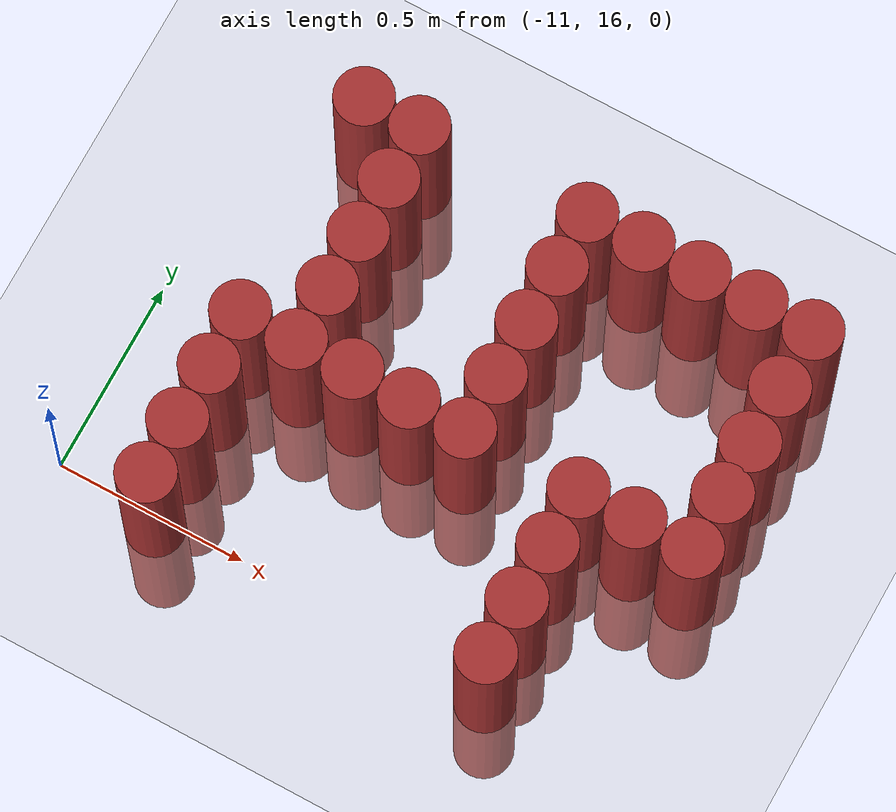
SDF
<sdf version="1.6">
 <world name="default">
  <model name="ground_plane">
   <static>1</static>
   <link name="link">
    <collision name="collision">
     <geometry><plane><normal>0 0 1</normal><size>100 100</size></plane></geometry>
     <surface><friction><ode><mu>100</mu><mu2>50</mu2></ode></friction></surface>
    </collision>
    <visual name="visual">
     <cast_shadows>0</cast_shadows>
     <geometry><plane><normal>0 0 1</normal><size>100 100</size></plane></geometry>
     <material>
      <script><uri>file://media/materials/scripts/gazebo.material</uri><name>Gazebo/Grey</name></script>
     </material>
    </visual>
   </link>
  </model>
  <model name="unit_cylinder_340">
   <static>1</static>
   <pose>-10.725 15.975 0 0 -0 0</pose>
   <link name="link">
    <inertial>
     <mass>1</mass>
     <inertia><ixx>0.145833</ixx><ixy>0</ixy><ixz>0</ixz><iyy>0.145833</iyy><iyz>0</iyz><izz>0.125</izz></inertia>
    </inertial>
    <collision name="collision">
     <geometry><cylinder><radius>0.075</radius><length>1</length></cylinder></geometry>
    </collision>
    <visual name="visual">
     <geometry><cylinder><radius>0.075</radius><length>1</length></cylinder></geometry>
     <material><ambient>0.648 0.192 0.192 1</ambient><diffuse>0.648 0.192 0.192 1</diffuse></material>
     <material>
      <script><name>Gazebo/Grey</name><uri>file://media/materials/scripts/gazebo.material</uri></script>
     </material>
    </visual>
   </link>
  </model>
  <model name="unit_cylinder_341">
   <static>1</static>
   <pose>-10.725 16.125 0 0 -0 0</pose>
   <link name="link">
    <inertial>
     <mass>1</mass>
     <inertia><ixx>0.145833</ixx><ixy>0</ixy><ixz>0</ixz><iyy>0.145833</iyy><iyz>0</iyz><izz>0.125</izz></inertia>
    </inertial>
    <collision name="collision">
     <geometry><cylinder><radius>0.075</radius><length>1</length></cylinder></geometry>
    </collision>
    <visual name="visual">
     <geometry><cylinder><radius>0.075</radius><length>1</length></cylinder></geometry>
     <material><ambient>0.648 0.192 0.192 1</ambient><diffuse>0.648 0.192 0.192 1</diffuse></material>
     <material>
      <script><name>Gazebo/Grey</name><uri>file://media/materials/scripts/gazebo.material</uri></script>
     </material>
    </visual>
   </link>
  </model>
  <model name="unit_cylinder_342">
   <static>1</static>
   <pose>-10.725 16.275 0 0 -0 0</pose>
   <link name="link">
    <inertial>
     <mass>1</mass>
     <inertia><ixx>0.145833</ixx><ixy>0</ixy><ixz>0</ixz><iyy>0.145833</iyy><iyz>0</iyz><izz>0.125</izz></inertia>
    </inertial>
    <collision name="collision">
     <geometry><cylinder><radius>0.075</radius><length>1</length></cylinder></geometry>
    </collision>
    <visual name="visual">
     <geometry><cylinder><radius>0.075</radius><length>1</length></cylinder></geometry>
     <material><ambient>0.648 0.192 0.192 1</ambient><diffuse>0.648 0.192 0.192 1</diffuse></material>
     <material>
      <script><name>Gazebo/Grey</name><uri>file://media/materials/scripts/gazebo.material</uri></script>
     </material>
    </visual>
   </link>
  </model>
  <model name="unit_cylinder_343">
   <static>1</static>
   <pose>-10.725 16.425 0 0 -0 0</pose>
   <link name="link">
    <inertial>
     <mass>1</mass>
     <inertia><ixx>0.145833</ixx><ixy>0</ixy><ixz>0</ixz><iyy>0.145833</iyy><iyz>0</iyz><izz>0.125</izz></inertia>
    </inertial>
    <collision name="collision">
     <geometry><cylinder><radius>0.075</radius><length>1</length></cylinder></geometry>
    </collision>
    <visual name="visual">
     <geometry><cylinder><radius>0.075</radius><length>1</length></cylinder></geometry>
     <material><ambient>0.648 0.192 0.192 1</ambient><diffuse>0.648 0.192 0.192 1</diffuse></material>
     <material>
      <script><name>Gazebo/Grey</name><uri>file://media/materials/scripts/gazebo.material</uri></script>
     </material>
    </visual>
   </link>
  </model>
  <model name="unit_cylinder_344">
   <static>1</static>
   <pose>-10.725 17.025 0 0 -0 0</pose>
   <link name="link">
    <inertial>
     <mass>1</mass>
     <inertia><ixx>0.145833</ixx><ixy>0</ixy><ixz>0</ixz><iyy>0.145833</iyy><iyz>0</iyz><izz>0.125</izz></inertia>
    </inertial>
    <collision name="collision">
     <geometry><cylinder><radius>0.075</radius><length>1</length></cylinder></geometry>
    </collision>
    <visual name="visual">
     <geometry><cylinder><radius>0.075</radius><length>1</length></cylinder></geometry>
     <material><ambient>0.648 0.192 0.192 1</ambient><diffuse>0.648 0.192 0.192 1</diffuse></material>
     <material>
      <script><name>Gazebo/Grey</name><uri>file://media/materials/scripts/gazebo.material</uri></script>
     </material>
    </visual>
   </link>
  </model>
  <model name="unit_cylinder_365">
   <static>1</static>
   <pose>-10.575 16.425 0 0 -0 0</pose>
   <link name="link">
    <inertial>
     <mass>1</mass>
     <inertia><ixx>0.145833</ixx><ixy>0</ixy><ixz>0</ixz><iyy>0.145833</iyy><iyz>0</iyz><izz>0.125</izz></inertia>
    </inertial>
    <collision name="collision">
     <geometry><cylinder><radius>0.075</radius><length>1</length></cylinder></geometry>
    </collision>
    <visual name="visual">
     <geometry><cylinder><radius>0.075</radius><length>1</length></cylinder></geometry>
     <material><ambient>0.648 0.192 0.192 1</ambient><diffuse>0.648 0.192 0.192 1</diffuse></material>
     <material>
      <script><name>Gazebo/Grey</name><uri>file://media/materials/scripts/gazebo.material</uri></script>
     </material>
    </visual>
   </link>
  </model>
  <model name="unit_cylinder_366">
   <static>1</static>
   <pose>-10.575 16.575 0 0 -0 0</pose>
   <link name="link">
    <inertial>
     <mass>1</mass>
     <inertia><ixx>0.145833</ixx><ixy>0</ixy><ixz>0</ixz><iyy>0.145833</iyy><iyz>0</iyz><izz>0.125</izz></inertia>
    </inertial>
    <collision name="collision">
     <geometry><cylinder><radius>0.075</radius><length>1</length></cylinder></geometry>
    </collision>
    <visual name="visual">
     <geometry><cylinder><radius>0.075</radius><length>1</length></cylinder></geometry>
     <material><ambient>0.648 0.192 0.192 1</ambient><diffuse>0.648 0.192 0.192 1</diffuse></material>
     <material>
      <script><name>Gazebo/Grey</name><uri>file://media/materials/scripts/gazebo.material</uri></script>
     </material>
    </visual>
   </link>
  </model>
  <model name="unit_cylinder_367">
   <static>1</static>
   <pose>-10.575 16.725 0 0 -0 0</pose>
   <link name="link">
    <inertial>
     <mass>1</mass>
     <inertia><ixx>0.145833</ixx><ixy>0</ixy><ixz>0</ixz><iyy>0.145833</iyy><iyz>0</iyz><izz>0.125</izz></inertia>
    </inertial>
    <collision name="collision">
     <geometry><cylinder><radius>0.075</radius><length>1</length></cylinder></geometry>
    </collision>
    <visual name="visual">
     <geometry><cylinder><radius>0.075</radius><length>1</length></cylinder></geometry>
     <material><ambient>0.648 0.192 0.192 1</ambient><diffuse>0.648 0.192 0.192 1</diffuse></material>
     <material>
      <script><name>Gazebo/Grey</name><uri>file://media/materials/scripts/gazebo.material</uri></script>
     </material>
    </visual>
   </link>
  </model>
  <model name="unit_cylinder_368">
   <static>1</static>
   <pose>-10.575 16.875 0 0 -0 0</pose>
   <link name="link">
    <inertial>
     <mass>1</mass>
     <inertia><ixx>0.145833</ixx><ixy>0</ixy><ixz>0</ixz><iyy>0.145833</iyy><iyz>0</iyz><izz>0.125</izz></inertia>
    </inertial>
    <collision name="collision">
     <geometry><cylinder><radius>0.075</radius><length>1</length></cylinder></geometry>
    </collision>
    <visual name="visual">
     <geometry><cylinder><radius>0.075</radius><length>1</length></cylinder></geometry>
     <material><ambient>0.648 0.192 0.192 1</ambient><diffuse>0.648 0.192 0.192 1</diffuse></material>
     <material>
      <script><name>Gazebo/Grey</name><uri>file://media/materials/scripts/gazebo.material</uri></script>
     </material>
    </visual>
   </link>
  </model>
  <model name="unit_cylinder_369">
   <static>1</static>
   <pose>-10.575 17.025 0 0 -0 0</pose>
   <link name="link">
    <inertial>
     <mass>1</mass>
     <inertia><ixx>0.145833</ixx><ixy>0</ixy><ixz>0</ixz><iyy>0.145833</iyy><iyz>0</iyz><izz>0.125</izz></inertia>
    </inertial>
    <collision name="collision">
     <geometry><cylinder><radius>0.075</radius><length>1</length></cylinder></geometry>
    </collision>
    <visual name="visual">
     <geometry><cylinder><radius>0.075</radius><length>1</length></cylinder></geometry>
     <material><ambient>0.648 0.192 0.192 1</ambient><diffuse>0.648 0.192 0.192 1</diffuse></material>
     <material>
      <script><name>Gazebo/Grey</name><uri>file://media/materials/scripts/gazebo.material</uri></script>
     </material>
    </visual>
   </link>
  </model>
  <model name="unit_cylinder_379">
   <static>1</static>
   <pose>-10.425 16.425 0 0 -0 0</pose>
   <link name="link">
    <inertial>
     <mass>1</mass>
     <inertia><ixx>0.145833</ixx><ixy>0</ixy><ixz>0</ixz><iyy>0.145833</iyy><iyz>0</iyz><izz>0.125</izz></inertia>
    </inertial>
    <collision name="collision">
     <geometry><cylinder><radius>0.075</radius><length>1</length></cylinder></geometry>
    </collision>
    <visual name="visual">
     <geometry><cylinder><radius>0.075</radius><length>1</length></cylinder></geometry>
     <material><ambient>0.648 0.192 0.192 1</ambient><diffuse>0.648 0.192 0.192 1</diffuse></material>
     <material>
      <script><name>Gazebo/Grey</name><uri>file://media/materials/scripts/gazebo.material</uri></script>
     </material>
    </visual>
   </link>
  </model>
  <model name="unit_cylinder_402">
   <static>1</static>
   <pose>-10.275 16.425 0 0 -0 0</pose>
   <link name="link">
    <inertial>
     <mass>1</mass>
     <inertia><ixx>0.145833</ixx><ixy>0</ixy><ixz>0</ixz><iyy>0.145833</iyy><iyz>0</iyz><izz>0.125</izz></inertia>
    </inertial>
    <collision name="collision">
     <geometry><cylinder><radius>0.075</radius><length>1</length></cylinder></geometry>
    </collision>
    <visual name="visual">
     <geometry><cylinder><radius>0.075</radius><length>1</length></cylinder></geometry>
     <material><ambient>0.648 0.192 0.192 1</ambient><diffuse>0.648 0.192 0.192 1</diffuse></material>
     <material>
      <script><name>Gazebo/Grey</name><uri>file://media/materials/scripts/gazebo.material</uri></script>
     </material>
    </visual>
   </link>
  </model>
  <model name="unit_cylinder_416">
   <static>1</static>
   <pose>-10.125 16.425 0 0 -0 0</pose>
   <link name="link">
    <inertial>
     <mass>1</mass>
     <inertia><ixx>0.145833</ixx><ixy>0</ixy><ixz>0</ixz><iyy>0.145833</iyy><iyz>0</iyz><izz>0.125</izz></inertia>
    </inertial>
    <collision name="collision">
     <geometry><cylinder><radius>0.075</radius><length>1</length></cylinder></geometry>
    </collision>
    <visual name="visual">
     <geometry><cylinder><radius>0.075</radius><length>1</length></cylinder></geometry>
     <material><ambient>0.648 0.192 0.192 1</ambient><diffuse>0.648 0.192 0.192 1</diffuse></material>
     <material>
      <script><name>Gazebo/Grey</name><uri>file://media/materials/scripts/gazebo.material</uri></script>
     </material>
    </visual>
   </link>
  </model>
  <model name="unit_cylinder_417">
   <static>1</static>
   <pose>-10.125 16.575 0 0 -0 0</pose>
   <link name="link">
    <inertial>
     <mass>1</mass>
     <inertia><ixx>0.145833</ixx><ixy>0</ixy><ixz>0</ixz><iyy>0.145833</iyy><iyz>0</iyz><izz>0.125</izz></inertia>
    </inertial>
    <collision name="collision">
     <geometry><cylinder><radius>0.075</radius><length>1</length></cylinder></geometry>
    </collision>
    <visual name="visual">
     <geometry><cylinder><radius>0.075</radius><length>1</length></cylinder></geometry>
     <material><ambient>0.648 0.192 0.192 1</ambient><diffuse>0.648 0.192 0.192 1</diffuse></material>
     <material>
      <script><name>Gazebo/Grey</name><uri>file://media/materials/scripts/gazebo.material</uri></script>
     </material>
    </visual>
   </link>
  </model>
  <model name="unit_cylinder_418">
   <static>1</static>
   <pose>-10.125 16.725 0 0 -0 0</pose>
   <link name="link">
    <inertial>
     <mass>1</mass>
     <inertia><ixx>0.145833</ixx><ixy>0</ixy><ixz>0</ixz><iyy>0.145833</iyy><iyz>0</iyz><izz>0.125</izz></inertia>
    </inertial>
    <collision name="collision">
     <geometry><cylinder><radius>0.075</radius><length>1</length></cylinder></geometry>
    </collision>
    <visual name="visual">
     <geometry><cylinder><radius>0.075</radius><length>1</length></cylinder></geometry>
     <material><ambient>0.648 0.192 0.192 1</ambient><diffuse>0.648 0.192 0.192 1</diffuse></material>
     <material>
      <script><name>Gazebo/Grey</name><uri>file://media/materials/scripts/gazebo.material</uri></script>
     </material>
    </visual>
   </link>
  </model>
  <model name="unit_cylinder_419">
   <static>1</static>
   <pose>-10.125 16.875 0 0 -0 0</pose>
   <link name="link">
    <inertial>
     <mass>1</mass>
     <inertia><ixx>0.145833</ixx><ixy>0</ixy><ixz>0</ixz><iyy>0.145833</iyy><iyz>0</iyz><izz>0.125</izz></inertia>
    </inertial>
    <collision name="collision">
     <geometry><cylinder><radius>0.075</radius><length>1</length></cylinder></geometry>
    </collision>
    <visual name="visual">
     <geometry><cylinder><radius>0.075</radius><length>1</length></cylinder></geometry>
     <material><ambient>0.648 0.192 0.192 1</ambient><diffuse>0.648 0.192 0.192 1</diffuse></material>
     <material>
      <script><name>Gazebo/Grey</name><uri>file://media/materials/scripts/gazebo.material</uri></script>
     </material>
    </visual>
   </link>
  </model>
  <model name="unit_cylinder_420">
   <static>1</static>
   <pose>-10.125 17.025 0 0 -0 0</pose>
   <link name="link">
    <inertial>
     <mass>1</mass>
     <inertia><ixx>0.145833</ixx><ixy>0</ixy><ixz>0</ixz><iyy>0.145833</iyy><iyz>0</iyz><izz>0.125</izz></inertia>
    </inertial>
    <collision name="collision">
     <geometry><cylinder><radius>0.075</radius><length>1</length></cylinder></geometry>
    </collision>
    <visual name="visual">
     <geometry><cylinder><radius>0.075</radius><length>1</length></cylinder></geometry>
     <material><ambient>0.648 0.192 0.192 1</ambient><diffuse>0.648 0.192 0.192 1</diffuse></material>
     <material>
      <script><name>Gazebo/Grey</name><uri>file://media/materials/scripts/gazebo.material</uri></script>
     </material>
    </visual>
   </link>
  </model>
  <model name="unit_cylinder_429">
   <static>1</static>
   <pose>-9.975 17.025 0 0 -0 0</pose>
   <link name="link">
    <inertial>
     <mass>1</mass>
     <inertia><ixx>0.145833</ixx><ixy>0</ixy><ixz>0</ixz><iyy>0.145833</iyy><iyz>0</iyz><izz>0.125</izz></inertia>
    </inertial>
    <collision name="collision">
     <geometry><cylinder><radius>0.075</radius><length>1</length></cylinder></geometry>
    </collision>
    <visual name="visual">
     <geometry><cylinder><radius>0.075</radius><length>1</length></cylinder></geometry>
     <material><ambient>0.648 0.192 0.192 1</ambient><diffuse>0.648 0.192 0.192 1</diffuse></material>
     <material>
      <script><name>Gazebo/Grey</name><uri>file://media/materials/scripts/gazebo.material</uri></script>
     </material>
    </visual>
   </link>
  </model>
  <model name="unit_cylinder_451">
   <static>1</static>
   <pose>-9.825 15.975 0 0 -0 0</pose>
   <link name="link">
    <inertial>
     <mass>1</mass>
     <inertia><ixx>0.145833</ixx><ixy>0</ixy><ixz>0</ixz><iyy>0.145833</iyy><iyz>0</iyz><izz>0.125</izz></inertia>
    </inertial>
    <collision name="collision">
     <geometry><cylinder><radius>0.075</radius><length>1</length></cylinder></geometry>
    </collision>
    <visual name="visual">
     <geometry><cylinder><radius>0.075</radius><length>1</length></cylinder></geometry>
     <material><ambient>0.648 0.192 0.192 1</ambient><diffuse>0.648 0.192 0.192 1</diffuse></material>
     <material>
      <script><name>Gazebo/Grey</name><uri>file://media/materials/scripts/gazebo.material</uri></script>
     </material>
    </visual>
   </link>
  </model>
  <model name="unit_cylinder_452">
   <static>1</static>
   <pose>-9.825 16.125 0 0 -0 0</pose>
   <link name="link">
    <inertial>
     <mass>1</mass>
     <inertia><ixx>0.145833</ixx><ixy>0</ixy><ixz>0</ixz><iyy>0.145833</iyy><iyz>0</iyz><izz>0.125</izz></inertia>
    </inertial>
    <collision name="collision">
     <geometry><cylinder><radius>0.075</radius><length>1</length></cylinder></geometry>
    </collision>
    <visual name="visual">
     <geometry><cylinder><radius>0.075</radius><length>1</length></cylinder></geometry>
     <material><ambient>0.648 0.192 0.192 1</ambient><diffuse>0.648 0.192 0.192 1</diffuse></material>
     <material>
      <script><name>Gazebo/Grey</name><uri>file://media/materials/scripts/gazebo.material</uri></script>
     </material>
    </visual>
   </link>
  </model>
  <model name="unit_cylinder_453">
   <static>1</static>
   <pose>-9.825 16.275 0 0 -0 0</pose>
   <link name="link">
    <inertial>
     <mass>1</mass>
     <inertia><ixx>0.145833</ixx><ixy>0</ixy><ixz>0</ixz><iyy>0.145833</iyy><iyz>0</iyz><izz>0.125</izz></inertia>
    </inertial>
    <collision name="collision">
     <geometry><cylinder><radius>0.075</radius><length>1</length></cylinder></geometry>
    </collision>
    <visual name="visual">
     <geometry><cylinder><radius>0.075</radius><length>1</length></cylinder></geometry>
     <material><ambient>0.648 0.192 0.192 1</ambient><diffuse>0.648 0.192 0.192 1</diffuse></material>
     <material>
      <script><name>Gazebo/Grey</name><uri>file://media/materials/scripts/gazebo.material</uri></script>
     </material>
    </visual>
   </link>
  </model>
  <model name="unit_cylinder_454">
   <static>1</static>
   <pose>-9.825 16.425 0 0 -0 0</pose>
   <link name="link">
    <inertial>
     <mass>1</mass>
     <inertia><ixx>0.145833</ixx><ixy>0</ixy><ixz>0</ixz><iyy>0.145833</iyy><iyz>0</iyz><izz>0.125</izz></inertia>
    </inertial>
    <collision name="collision">
     <geometry><cylinder><radius>0.075</radius><length>1</length></cylinder></geometry>
    </collision>
    <visual name="visual">
     <geometry><cylinder><radius>0.075</radius><length>1</length></cylinder></geometry>
     <material><ambient>0.648 0.192 0.192 1</ambient><diffuse>0.648 0.192 0.192 1</diffuse></material>
     <material>
      <script><name>Gazebo/Grey</name><uri>file://media/materials/scripts/gazebo.material</uri></script>
     </material>
    </visual>
   </link>
  </model>
  <model name="unit_cylinder_455">
   <static>1</static>
   <pose>-9.825 17.025 0 0 -0 0</pose>
   <link name="link">
    <inertial>
     <mass>1</mass>
     <inertia><ixx>0.145833</ixx><ixy>0</ixy><ixz>0</ixz><iyy>0.145833</iyy><iyz>0</iyz><izz>0.125</izz></inertia>
    </inertial>
    <collision name="collision">
     <geometry><cylinder><radius>0.075</radius><length>1</length></cylinder></geometry>
    </collision>
    <visual name="visual">
     <geometry><cylinder><radius>0.075</radius><length>1</length></cylinder></geometry>
     <material><ambient>0.648 0.192 0.192 1</ambient><diffuse>0.648 0.192 0.192 1</diffuse></material>
     <material>
      <script><name>Gazebo/Grey</name><uri>file://media/materials/scripts/gazebo.material</uri></script>
     </material>
    </visual>
   </link>
  </model>
  <model name="unit_cylinder_468">
   <static>1</static>
   <pose>-9.675 16.425 0 0 -0 0</pose>
   <link name="link">
    <inertial>
     <mass>1</mass>
     <inertia><ixx>0.145833</ixx><ixy>0</ixy><ixz>0</ixz><iyy>0.145833</iyy><iyz>0</iyz><izz>0.125</izz></inertia>
    </inertial>
    <collision name="collision">
     <geometry><cylinder><radius>0.075</radius><length>1</length></cylinder></geometry>
    </collision>
    <visual name="visual">
     <geometry><cylinder><radius>0.075</radius><length>1</length></cylinder></geometry>
     <material><ambient>0.648 0.192 0.192 1</ambient><diffuse>0.648 0.192 0.192 1</diffuse></material>
     <material>
      <script><name>Gazebo/Grey</name><uri>file://media/materials/scripts/gazebo.material</uri></script>
     </material>
    </visual>
   </link>
  </model>
  <model name="unit_cylinder_469">
   <static>1</static>
   <pose>-9.675 17.025 0 0 -0 0</pose>
   <link name="link">
    <inertial>
     <mass>1</mass>
     <inertia><ixx>0.145833</ixx><ixy>0</ixy><ixz>0</ixz><iyy>0.145833</iyy><iyz>0</iyz><izz>0.125</izz></inertia>
    </inertial>
    <collision name="collision">
     <geometry><cylinder><radius>0.075</radius><length>1</length></cylinder></geometry>
    </collision>
    <visual name="visual">
     <geometry><cylinder><radius>0.075</radius><length>1</length></cylinder></geometry>
     <material><ambient>0.648 0.192 0.192 1</ambient><diffuse>0.648 0.192 0.192 1</diffuse></material>
     <material>
      <script><name>Gazebo/Grey</name><uri>file://media/materials/scripts/gazebo.material</uri></script>
     </material>
    </visual>
   </link>
  </model>
  <model name="unit_cylinder_486">
   <static>1</static>
   <pose>-9.525 16.425 0 0 -0 0</pose>
   <link name="link">
    <inertial>
     <mass>1</mass>
     <inertia><ixx>0.145833</ixx><ixy>0</ixy><ixz>0</ixz><iyy>0.145833</iyy><iyz>0</iyz><izz>0.125</izz></inertia>
    </inertial>
    <collision name="collision">
     <geometry><cylinder><radius>0.075</radius><length>1</length></cylinder></geometry>
    </collision>
    <visual name="visual">
     <geometry><cylinder><radius>0.075</radius><length>1</length></cylinder></geometry>
     <material><ambient>0.648 0.192 0.192 1</ambient><diffuse>0.648 0.192 0.192 1</diffuse></material>
     <material>
      <script><name>Gazebo/Grey</name><uri>file://media/materials/scripts/gazebo.material</uri></script>
     </material>
    </visual>
   </link>
  </model>
  <model name="unit_cylinder_487">
   <static>1</static>
   <pose>-9.525 16.575 0 0 -0 0</pose>
   <link name="link">
    <inertial>
     <mass>1</mass>
     <inertia><ixx>0.145833</ixx><ixy>0</ixy><ixz>0</ixz><iyy>0.145833</iyy><iyz>0</iyz><izz>0.125</izz></inertia>
    </inertial>
    <collision name="collision">
     <geometry><cylinder><radius>0.075</radius><length>1</length></cylinder></geometry>
    </collision>
    <visual name="visual">
     <geometry><cylinder><radius>0.075</radius><length>1</length></cylinder></geometry>
     <material><ambient>0.648 0.192 0.192 1</ambient><diffuse>0.648 0.192 0.192 1</diffuse></material>
     <material>
      <script><name>Gazebo/Grey</name><uri>file://media/materials/scripts/gazebo.material</uri></script>
     </material>
    </visual>
   </link>
  </model>
  <model name="unit_cylinder_488">
   <static>1</static>
   <pose>-9.525 17.025 0 0 -0 0</pose>
   <link name="link">
    <inertial>
     <mass>1</mass>
     <inertia><ixx>0.145833</ixx><ixy>0</ixy><ixz>0</ixz><iyy>0.145833</iyy><iyz>0</iyz><izz>0.125</izz></inertia>
    </inertial>
    <collision name="collision">
     <geometry><cylinder><radius>0.075</radius><length>1</length></cylinder></geometry>
    </collision>
    <visual name="visual">
     <geometry><cylinder><radius>0.075</radius><length>1</length></cylinder></geometry>
     <material><ambient>0.648 0.192 0.192 1</ambient><diffuse>0.648 0.192 0.192 1</diffuse></material>
     <material>
      <script><name>Gazebo/Grey</name><uri>file://media/materials/scripts/gazebo.material</uri></script>
     </material>
    </visual>
   </link>
  </model>
  <model name="unit_cylinder_488_clone">
   <static>1</static>
   <pose>-9.52863 16.8659 0 0 -0 0</pose>
   <link name="link">
    <inertial>
     <mass>1</mass>
     <inertia><ixx>0.145833</ixx><ixy>0</ixy><ixz>0</ixz><iyy>0.145833</iyy><iyz>0</iyz><izz>0.125</izz></inertia>
    </inertial>
    <collision name="collision">
     <geometry><cylinder><radius>0.075</radius><length>1</length></cylinder></geometry>
    </collision>
    <visual name="visual">
     <geometry><cylinder><radius>0.075</radius><length>1</length></cylinder></geometry>
     <material><ambient>0.648 0.192 0.192 1</ambient><diffuse>0.648 0.192 0.192 1</diffuse></material>
     <material>
      <script><name>Gazebo/Grey</name><uri>file://media/materials/scripts/gazebo.material</uri></script>
     </material>
    </visual>
   </link>
  </model>
  <model name="unit_cylinder_488_clone_0">
   <static>1</static>
   <pose>-9.52726 16.7138 0 0 -0 0</pose>
   <link name="link">
    <inertial>
     <mass>1</mass>
     <inertia><ixx>0.145833</ixx><ixy>0</ixy><ixz>0</ixz><iyy>0.145833</iyy><iyz>0</iyz><izz>0.125</izz></inertia>
    </inertial>
    <collision name="collision">
     <geometry><cylinder><radius>0.075</radius><length>1</length></cylinder></geometry>
    </collision>
    <visual name="visual">
     <geometry><cylinder><radius>0.075</radius><length>1</length></cylinder></geometry>
     <material><ambient>0.648 0.192 0.192 1</ambient><diffuse>0.648 0.192 0.192 1</diffuse></material>
     <material>
      <script><name>Gazebo/Grey</name><uri>file://media/materials/scripts/gazebo.material</uri></script>
     </material>
    </visual>
   </link>
  </model>
 </world>
</sdf>
